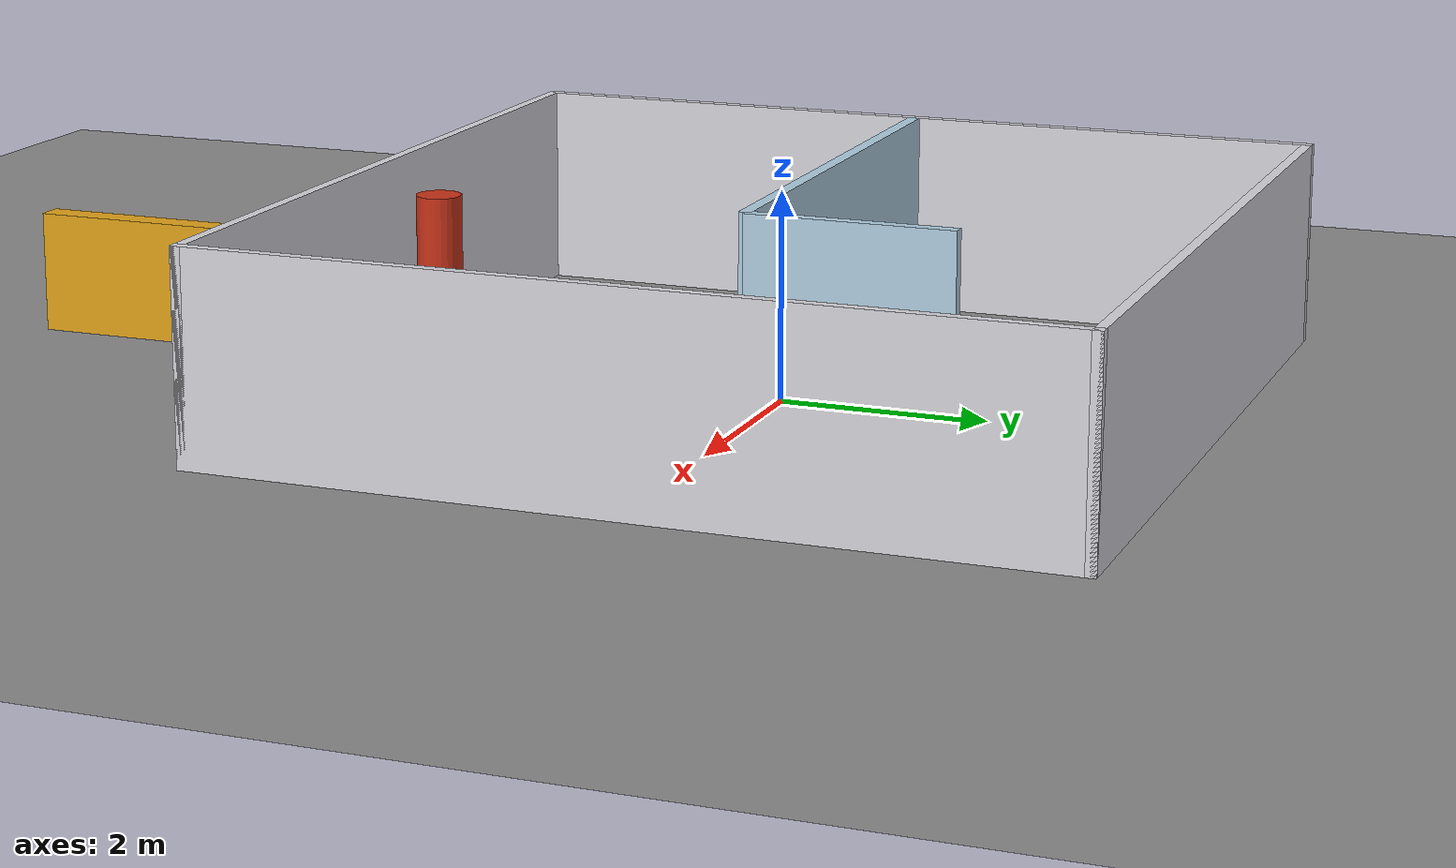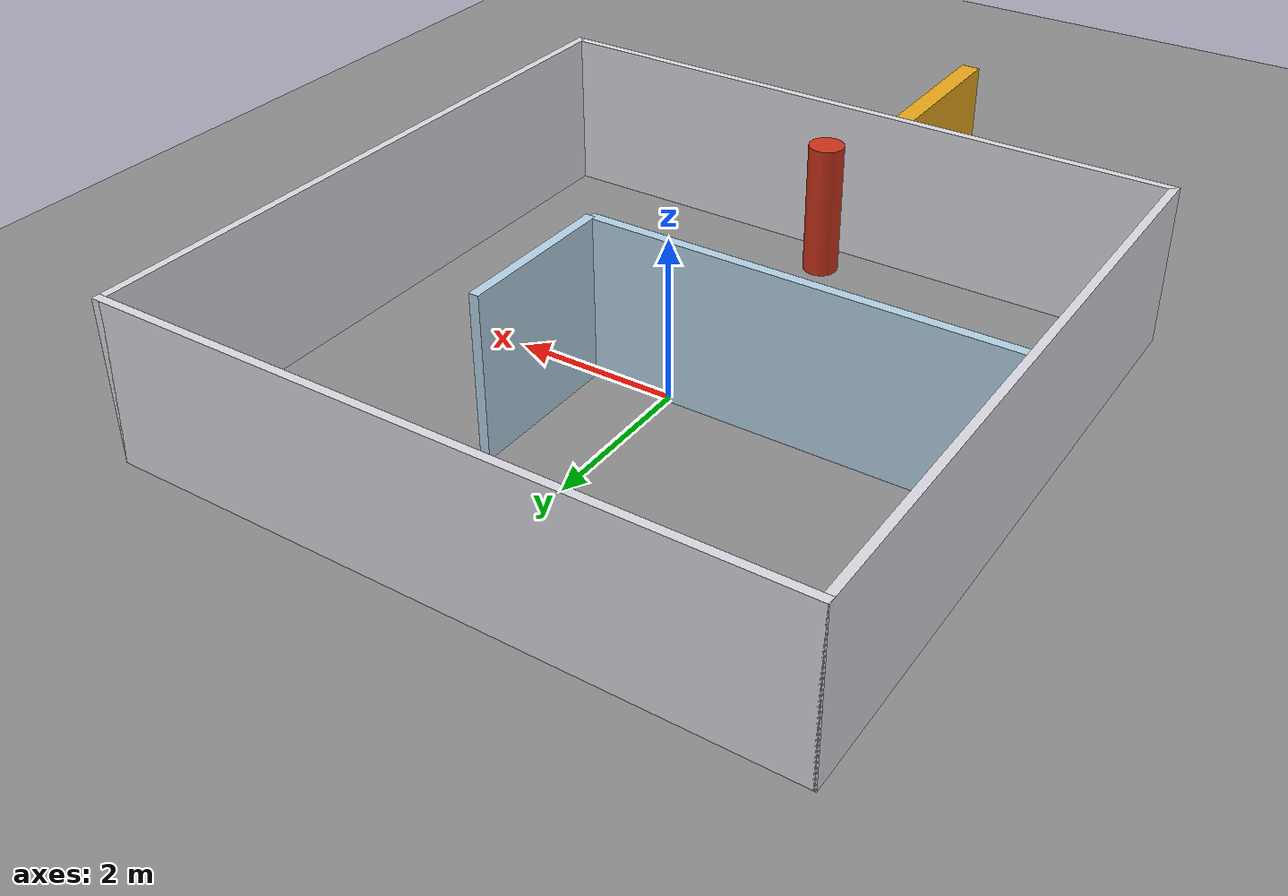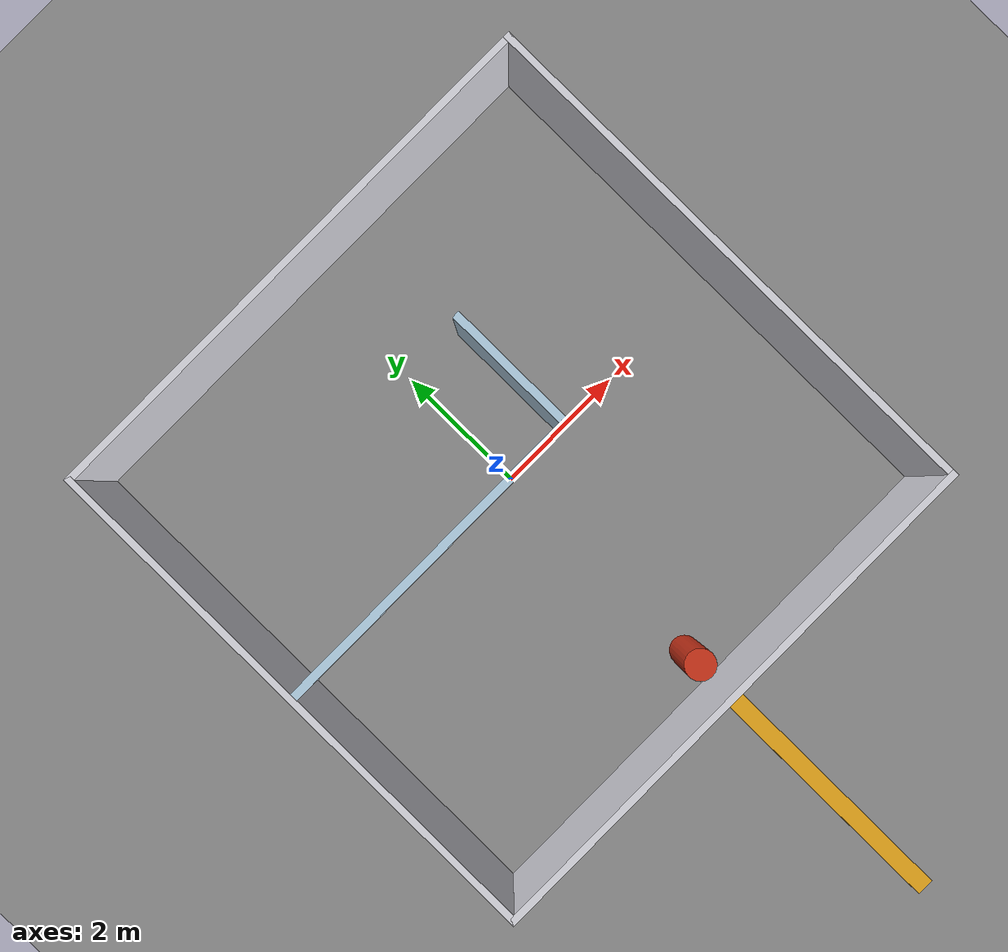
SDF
<?xml version="1.0"?>
<sdf version="1.6">
  <world name="corridor_demo">
    <physics type="ode"><real_time_update_rate>1000</real_time_update_rate><max_step_size>0.001</max_step_size></physics>
    <plugin name="gazebo_ros_state" filename="libgazebo_ros_state.so">
      <ros><namespace>/</namespace></ros>
      <update_rate>50.0</update_rate>
    </plugin>
    <!-- Keep the demo fully offline: no model://sun or model://ground_plane
         lookup is allowed to block world loading on the Gazebo model CDN. -->
    <light name="sun" type="directional">
      <pose>0 0 10 0 0 0</pose>
      <diffuse>0.8 0.8 0.8 1</diffuse>
      <specular>0.2 0.2 0.2 1</specular>
      <direction>-0.5 0.1 -0.9</direction>
      <cast_shadows>true</cast_shadows>
    </light>
    <model name="ground_plane">
      <static>true</static>
      <link name="ground">
        <collision name="collision">
          <geometry><plane><normal>0 0 1</normal><size>20 20</size></plane></geometry>
        </collision>
        <visual name="visual">
          <geometry><plane><normal>0 0 1</normal><size>20 20</size></plane></geometry>
          <material><ambient>0.45 0.45 0.45 1</ambient><diffuse>0.55 0.55 0.55 1</diffuse></material>
        </visual>
      </link>
    </model>

    <model name="wall_west"><static>true</static><pose>-4.05 0 1 0 0 0</pose><link name="wall"><collision name="c"><geometry><box><size>0.10 8.20 2.0</size></box></geometry></collision><visual name="v"><geometry><box><size>0.10 8.20 2.0</size></box></geometry><material><ambient>0.85 0.85 0.88 1</ambient></material></visual></link></model>
    <model name="wall_east"><static>true</static><pose>4.05 0 1 0 0 0</pose><link name="wall"><collision name="c"><geometry><box><size>0.10 8.20 2.0</size></box></geometry></collision><visual name="v"><geometry><box><size>0.10 8.20 2.0</size></box></geometry><material><ambient>0.85 0.85 0.88 1</ambient></material></visual></link></model>
    <model name="wall_south"><static>true</static><pose>0 -4.05 1 0 0 0</pose><link name="wall"><collision name="c"><geometry><box><size>8.20 0.10 2.0</size></box></geometry></collision><visual name="v"><geometry><box><size>8.20 0.10 2.0</size></box></geometry><material><ambient>0.85 0.85 0.88 1</ambient></material></visual></link></model>
    <model name="wall_north"><static>true</static><pose>0 4.05 1 0 0 0</pose><link name="wall"><collision name="c"><geometry><box><size>8.20 0.10 2.0</size></box></geometry></collision><visual name="v"><geometry><box><size>8.20 0.10 2.0</size></box></geometry><material><ambient>0.85 0.85 0.88 1</ambient></material></visual></link></model>
    <model name="wall_corner_horizontal"><static>true</static><pose>-1.50 0 1 0 0 0</pose><link name="wall"><collision name="c"><geometry><box><size>5.00 0.12 2.0</size></box></geometry></collision><visual name="v"><geometry><box><size>5.00 0.12 2.0</size></box></geometry><material><ambient>0.70 0.82 0.90 1</ambient></material></visual></link></model>
    <model name="wall_corner_vertical"><static>true</static><pose>1.0 1.0 1 0 0 0</pose><link name="wall"><collision name="c"><geometry><box><size>0.12 2.00 2.0</size></box></geometry></collision><visual name="v"><geometry><box><size>0.12 2.00 2.0</size></box></geometry><material><ambient>0.70 0.82 0.90 1</ambient></material></visual></link></model>

    <include><uri>model://pedestrian</uri><name>pedestrian</name><pose>0 -3.5 0.85 0 0 0</pose></include>
    <model name="route_blocker"><static>false</static><pose>0 -6 0.6 0 0 0</pose><link name="body"><gravity>false</gravity><collision name="c"><geometry><box><size>0.25 3.70 1.2</size></box></geometry></collision><visual name="v"><geometry><box><size>0.25 3.70 1.2</size></box></geometry><material><ambient>0.9 0.65 0.1 1</ambient></material></visual></link></model>
  </world>
</sdf>

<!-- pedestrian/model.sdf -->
<sdf version="1.6">
  <model name="pedestrian">
    <static>false</static>
    <link name="body">
      <gravity>false</gravity>
      <collision name="collision"><geometry><cylinder><radius>0.22</radius><length>1.7</length></cylinder></geometry></collision>
      <visual name="visual"><geometry><cylinder><radius>0.22</radius><length>1.7</length></cylinder></geometry><material><ambient>0.8 0.2 0.1 1</ambient><diffuse>0.8 0.2 0.1 1</diffuse></material></visual>
    </link>
  </model>
</sdf>
